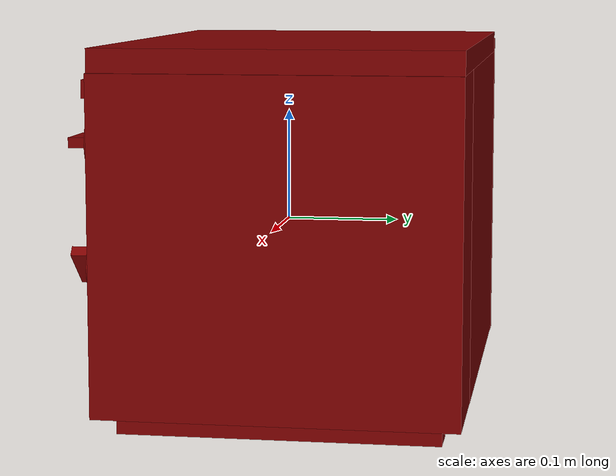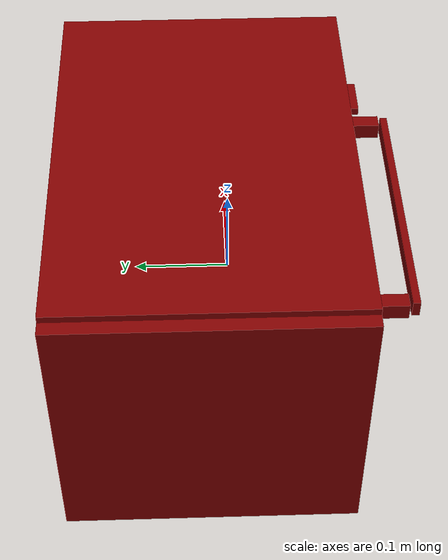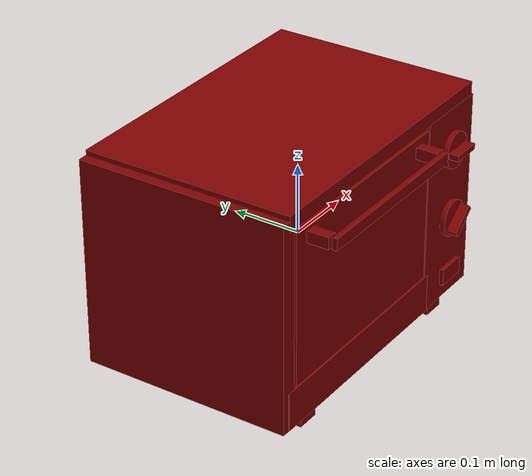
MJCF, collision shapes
<?xml version='1.0' encoding='UTF-8'?>
<mujoco model="model">
  <option timestep="0.002" gravity="0.0 0.0 -9.81"/>
  <compiler angle="radian"/>
  <asset>
    <mesh file="visuals/Body001.obj" name="Body001_vis"/>
    <mesh file="visuals/Button001.obj" name="Button001_vis"/>
    <mesh file="visuals/Door001.obj" name="Door001_vis"/>
    <mesh file="visuals/Door001_Clear.obj" name="Door001_Clear_vis"/>
    <mesh file="visuals/Handle001.obj" name="Handle001_vis"/>
    <mesh file="visuals/Knob001.obj" name="Knob001_vis"/>
    <mesh file="visuals/Knob002.obj" name="Knob002_vis"/>
    <mesh file="visuals/Shelf001.obj" name="Shelf001_vis"/>
    <mesh file="visuals/Shelf002.obj" name="Shelf002_vis"/>
    <texture file="visuals/T_BC001.png" name="Body001_material" type="2d"/>
    <material name="Body001_material" rgba="1 1 1 1.0" texture="Body001_material" shininess="0.1" specular="4"/>
    <texture file="visuals/T_BC001.png" name="Button001_material" type="2d"/>
    <material name="Button001_material" rgba="1 1 1 1.0" texture="Button001_material" shininess="0.1" specular="4"/>
    <texture file="visuals/T_BC001.png" name="Door001_material" type="2d"/>
    <material name="Door001_material" rgba="1 1 1 1.0" texture="Door001_material" shininess="1" specular="4"/>
    <material name="Door001_Clear_material" rgba="0.027718495577573776 0.027718495577573776 0.027718495577573776 0.8508064150810242" shininess="0.5" specular="0.3103448502657381"/>
    <texture file="visuals/T_BC001.png" name="Handle001_material" type="2d"/>
    <material name="Handle001_material" rgba="1 1 1 1.0" texture="Handle001_material" shininess="0.1" specular="4"/>
    <texture file="visuals/T_BC001.png" name="Knob001_material" type="2d"/>
    <material name="Knob001_material" rgba="1 1 1 1.0" texture="Knob001_material" shininess="0.1" specular="4"/>
    <texture file="visuals/T_BC001.png" name="Knob002_material" type="2d"/>
    <material name="Knob002_material" rgba="1 1 1 1.0" texture="Knob002_material" shininess="0.1" specular="4"/>
    <texture file="visuals/T_BC001.png" name="Shelf001_material" type="2d"/>
    <material name="Shelf001_material" rgba="1 1 1 1.0" texture="Shelf001_material" shininess="0.1" specular="4"/>
    <texture file="visuals/T_BC001.png" name="Shelf002_material" type="2d"/>
    <material name="Shelf002_material" rgba="1 1 1 1.0" texture="Shelf002_material" shininess="0.1" specular="4"/>
  </asset>
  <default>
    <default class="visual">
      <geom conaffinity="0" contype="0" group="1" type="mesh"/>
    </default>
    <default class="collision">
      <geom group="0" rgba="0.5 0 0 0.5"/>
    </default>
    <default class="spawn">
      <geom group="0" rgba="1 1 1 0.5" contype="0" conaffinity="0"/>
      <site group="0" rgba="1 1 1 0.5"/>
    </default>
    <default class="region">
      <geom group="1" conaffinity="0" contype="0" rgba="0 1 0 0"/>
    </default>
  </default>
  <worldbody>
    <body>
      <body name="object">
        <geom mesh="Body001_vis" type="mesh" solimp="0.998 0.998 0.001" solref="0.001 1" friction="0.95 0.3 0.1" class="visual" material="Body001_material"/>
        <geom class="collision" type="box" pos="-0.21877223253250122 0.02322467789053917 0.007634885609149933" size="0.01202850416302681 0.15374377369880676 0.15099817514419556" quat="1.0 0.0 0.0 0.0"/>
        <geom class="collision" type="box" pos="0.004826840478926897 0.02322467789053917 0.15505971014499664" size="0.2213992029428482 0.15374384820461273 0.01083868183195591" quat="1.0 0.0 0.0 0.0"/>
        <geom class="collision" type="box" pos="0.17352145910263062 0.02322467789053917 0.002373405732214451" size="0.05724387615919113 0.1537439227104187 0.14335086941719055" quat="1.0 0.0 0.0 0.0"/>
        <geom class="collision" type="box" pos="-0.047959938645362854 0.158494770526886 0.0018804371356964111" size="0.1712847352027893 0.018475137650966644 0.1438439041376114" quat="1.0 0.0 0.0 0.0"/>
        <geom class="collision" type="box" pos="-0.047959938645362854 0.004568807780742645 -0.11468327790498734" size="0.17128480970859528 0.1358461230993271 0.028275391086935997" quat="1.0 0.0 0.0 0.0"/>
        <geom class="collision" type="box" pos="-0.04832351580262184 0.030500903725624084 0.1415063440799713" size="0.1195424348115921 0.1100500300526619 0.0033256211318075657" quat="1.0 0.0 0.0 0.0"/>
        <geom class="collision" type="box" pos="0.09545688331127167 0.02468828484416008 0.07972432672977448" size="0.001964716473594308 0.09458975493907928 0.001897080335766077" quat="1.0 0.0 0.0 0.0"/>
        <geom class="collision" type="box" pos="0.09545688331127167 0.006822250783443451 0.07002994418144226" size="0.0019647174049168825 0.1124558374285698 0.0018970812670886517" quat="1.0 0.0 0.0 0.0"/>
        <geom class="collision" type="box" pos="0.10748392343521118 -0.11092094331979752 0.07002994418144226" size="0.0015673907473683357 0.0096534239128232 0.0018970880191773176" quat="0.6907860636711121 0.0 -0.0 -0.7230591773986816"/>
        <geom class="collision" type="box" pos="0.10748392343521118 -0.11092094331979752 0.08554912358522415" size="0.0015673907473683357 0.0096534239128232 0.0018970880191773176" quat="0.6907860636711121 0.0 -0.0 -0.7230591773986816"/>
        <geom class="collision" type="box" pos="0.09545688331127167 -0.08733263611793518 0.08374722301959991" size="0.0019647241570055485 0.01828564703464508 0.001982876332476735" quat="0.9939031600952148 -0.11025635153055191 -0.0 0.0"/>
        <geom class="collision" type="box" pos="0.10748392343521118 0.12902984023094177 0.07885001599788666" size="0.0015673907473683357 0.0096534239128232 0.0018970880191773176" quat="0.6907861828804016 0.0 0.0 0.7230591177940369"/>
        <geom class="collision" type="box" pos="0.10748392343521118 0.12708550691604614 0.07002994418144226" size="0.0015673907473683357 0.0096534239128232 0.0018970880191773176" quat="0.6907861828804016 0.0 0.0 0.7230591177940369"/>
        <geom class="collision" type="box" pos="0.10748392343521118 0.12708550691604614 -0.016184449195861816" size="0.0015673907473683357 0.0096534239128232 0.0018970880191773176" quat="0.6907861828804016 0.0 0.0 0.7230591177940369"/>
        <geom class="collision" type="box" pos="0.10748392343521118 0.12902984023094177 -0.00780215859413147" size="0.0015673907473683357 0.0096534239128232 0.0018970880191773176" quat="0.6907861828804016 0.0 0.0 0.7230591177940369"/>
        <geom class="collision" type="box" pos="0.09545688331127167 -0.08733263611793518 -0.002904951572418213" size="0.0019647241570055485 0.01828564703464508 0.001982876332476735" quat="0.9939031600952148 -0.11025635153055191 -0.0 0.0"/>
        <geom class="collision" type="box" pos="0.10748392343521118 -0.11092094331979752 -0.0011030510067939758" size="0.0015673907473683357 0.0096534239128232 0.0018970880191773176" quat="0.6907860636711121 0.0 -0.0 -0.7230591773986816"/>
        <geom class="collision" type="box" pos="0.10748392343521118 -0.11092094331979752 -0.016184449195861816" size="0.0015673907473683357 0.0096534239128232 0.0018970880191773176" quat="0.6907860636711121 0.0 -0.0 -0.7230591773986816"/>
        <geom class="collision" type="box" pos="0.09545688331127167 0.006822250783443451 -0.016184449195861816" size="0.001964718336239457 0.11245589703321457 0.0018970820819959044" quat="1.0 0.0 0.0 0.0"/>
        <geom class="collision" type="box" pos="0.09545688331127167 0.02468828484416008 -0.006927847862243652" size="0.0019647192675620317 0.09458992630243301 0.001897083013318479" quat="1.0 0.0 0.0 0.0"/>
        <geom class="collision" type="box" pos="-0.18817514181137085 0.024287831038236618 -0.006927848793566227" size="0.0019647199660539627 0.09458998590707779 0.0018970839446410537" quat="1.0 0.0 0.0 0.0"/>
        <geom class="collision" type="box" pos="-0.18817514181137085 0.006421797908842564 -0.016184449195861816" size="0.0019647208973765373 0.1124560683965683 0.0018970847595483065" quat="1.0 0.0 0.0 0.0"/>
        <geom class="collision" type="box" pos="-0.20020218193531036 -0.11132140457630157 -0.016184449195861816" size="0.0015673907473683357 0.0096534239128232 0.0018970880191773176" quat="0.6907861828804016 0.0 0.0 0.7230591177940369"/>
        <geom class="collision" type="box" pos="-0.20020218193531036 -0.11132140457630157 -0.0011030519381165504" size="0.0015673907473683357 0.0096534239128232 0.0018970880191773176" quat="0.6907861828804016 0.0 0.0 0.7230591177940369"/>
        <geom class="collision" type="box" pos="-0.18817514181137085 -0.08773308992385864 -0.0029049525037407875" size="0.0019647241570055485 0.01828564703464508 0.001982876332476735" quat="0.9939031600952148 -0.11025635153055191 -0.0 0.0"/>
        <geom class="collision" type="box" pos="-0.20020218193531036 0.1286293864250183 -0.007802159525454044" size="0.0015673907473683357 0.0096534239128232 0.0018970880191773176" quat="0.6907861828804016 0.0 -0.0 -0.7230591177940369"/>
        <geom class="collision" type="box" pos="-0.20020218193531036 0.12668505311012268 -0.016184449195861816" size="0.0015673907473683357 0.0096534239128232 0.0018970880191773176" quat="0.6907861828804016 0.0 -0.0 -0.7230591177940369"/>
        <geom class="collision" type="box" pos="-0.20020218193531036 0.12668505311012268 0.07002994418144226" size="0.0015673907473683357 0.0096534239128232 0.0018970880191773176" quat="0.6907861828804016 0.0 -0.0 -0.7230591177940369"/>
        <geom class="collision" type="box" pos="-0.20020218193531036 0.1286293864250183 0.07885001599788666" size="0.0015673907473683357 0.0096534239128232 0.0018970880191773176" quat="0.6907861828804016 0.0 -0.0 -0.7230591177940369"/>
        <geom class="collision" type="box" pos="-0.18817514181137085 -0.08773308992385864 0.08374722301959991" size="0.0019647241570055485 0.01828564703464508 0.001982876332476735" quat="0.9939031600952148 -0.11025635153055191 -0.0 0.0"/>
        <geom class="collision" type="box" pos="-0.20020218193531036 -0.11132140457630157 0.08554912358522415" size="0.0015673907473683357 0.0096534239128232 0.0018970880191773176" quat="0.6907861828804016 0.0 0.0 0.7230591177940369"/>
        <geom class="collision" type="box" pos="-0.20020218193531036 -0.11132140457630157 0.07002994418144226" size="0.0015673907473683357 0.0096534239128232 0.0018970880191773176" quat="0.6907861828804016 0.0 0.0 0.7230591177940369"/>
        <geom class="collision" type="box" pos="-0.18817514181137085 0.006421796977519989 0.07002994418144226" size="0.001964721828699112 0.11245612800121307 0.001897085690870881" quat="1.0 0.0 0.0 0.0"/>
        <geom class="collision" type="box" pos="-0.18817514181137085 0.024287831038236618 0.07972432672977448" size="0.0019647227600216866 0.09459014981985092 0.0018970865057781339" quat="1.0 0.0 0.0 0.0"/>
        <geom class="collision" type="box" pos="-0.15941759943962097 0.01840236410498619 -0.15419569611549377" size="0.01678498461842537 0.13938933610916138 0.011702729389071465" quat="1.0 0.0 0.0 0.0"/>
        <geom class="collision" type="box" pos="0.1624724268913269 0.01840236410498619 -0.15419569611549377" size="0.01678498648107052 0.13938935101032257 0.011702731251716614" quat="1.0 0.0 0.0 0.0"/>
        <body name="Button001">
          <joint axis="0.0 1.0 0.0" pos="0.17668302357196808 -0.13461464643478394 -0.10286121815443039" limited="true" name="Button001_joint" range="0.0 0.003" type="slide" damping="1" frictionloss="1" armature=".01" stiffness="0.05"/>
          <geom mesh="Button001_vis" type="mesh" solimp="0.998 0.998 0.001" solref="0.001 1" friction="0.95 0.3 0.1" class="visual" material="Button001_material"/>
          <geom class="collision" type="box" pos="0.17669694125652313 -0.13604387640953064 -0.10348032414913177" size="0.022439634427428246 0.003150008153170347 0.012216387316584587" quat="1.0 0.0 0.0 0.0"/>
        </body>
        <body name="Door001">
          <joint axis="1.0 0.0 0.0" pos="-0.04910198971629143 -0.1300266832113266 -0.09429144859313965" limited="true" name="Door001_joint" range="0.0 1.5707963267948966" type="hinge" damping="1" frictionloss="1" armature=".01" stiffness="0.05"/>
          <geom mesh="Door001_vis" type="mesh" solimp="0.998 0.998 0.001" solref="0.001 1" friction="0.95 0.3 0.1" class="visual" material="Door001_material"/>
          <geom class="collision" type="box" pos="-0.04572342708706856 -0.12485657632350922 0.02870841510593891" size="0.15778911113739014 0.006507790647447109 0.11144860088825226" quat="1.0 0.0 0.0 0.0"/>
          <body name="Door001_Clear">
            <geom mesh="Door001_Clear_vis" type="mesh" solimp="0.998 0.998 0.001" solref="0.001 1" friction="0.95 0.3 0.1" class="visual" material="Door001_Clear_material"/>
            <geom class="collision" type="box" pos="-0.04783531650900841 -0.12328512966632843 0.015823151916265488" size="0.15466490387916565 0.0022350559011101723 0.0910041555762291" quat="1.0 0.0 0.0 0.0"/>
          </body>
          <body name="Handle001">
            <geom mesh="Handle001_vis" type="mesh" solimp="0.998 0.998 0.001" solref="0.001 1" friction="0.95 0.3 0.1" class="visual" material="Handle001_material"/>
            <geom class="collision" type="box" pos="-0.046276964247226715 -0.17030739784240723 0.12317418307065964" size="0.13382969796657562 0.00368265132419765 0.008488301187753677" quat="1.0 0.0 0.0 0.0"/>
            <geom class="collision" type="box" pos="0.08291781693696976 -0.148769348859787 0.12317418307065964" size="0.007553317584097385 0.015613029710948467 0.008488301187753677" quat="1.0 0.0 0.0 0.0"/>
            <geom class="collision" type="box" pos="-0.17560052871704102 -0.14804984629154205 0.12317418307065964" size="0.007553317584097385 0.015613029710948467 0.008488301187753677" quat="1.0 0.0 0.0 0.0"/>
          </body>
        </body>
        <body name="Knob001">
          <joint axis="0.0 1.0 0.0" pos="0.1768685132265091 -0.142544686794281 0.08579237759113312" limited="true" name="Knob001_joint" range="0.0 5.410520681182422" type="hinge" damping="0.05" armature="0.001" springref="-0.01"/>
          <geom mesh="Knob001_vis" type="mesh" solimp="0.998 0.998 0.001" solref="0.001 1" friction="0.95 0.3 0.1" class="visual" material="Knob001_material"/>
          <geom class="collision" type="cylinder" pos="0.1769108772277832 -0.13558289408683777 0.08579499274492264" size="0.026501605287194252 0.003774190554395318" quat="0.7071067094802856 0.7071068286895752 0.0 0.0"/>
          <geom class="collision" type="box" pos="0.1767369508743286 -0.14637765288352966 0.08617718517780304" size="0.022439634427428246 0.007598815020173788 0.004390833433717489" quat="1.0 0.0 0.0 0.0"/>
        </body>
        <body name="Knob002">
          <joint axis="0.0 1.0 0.0" pos="0.1768685132265091 -0.1425272822380066 -0.019056694582104683" limited="true" name="Knob002_joint" range="0.0 5.410520681182422" type="hinge" damping="0.05" armature="0.001" springref="-0.01"/>
          <geom mesh="Knob002_vis" type="mesh" solimp="0.998 0.998 0.001" solref="0.001 1" friction="0.95 0.3 0.1" class="visual" material="Knob002_material"/>
          <geom class="collision" type="box" pos="0.17749057710170746 -0.14637765288352966 -0.019612757489085197" size="0.022439634427428246 0.007598815020173788 0.004390833433717489" quat="0.9408627152442932 0.0 -0.3387880027294159 0.0"/>
          <geom class="collision" type="cylinder" pos="0.1769108772277832 -0.13558289408683777 -0.018895963206887245" size="0.026501605287194252 0.003774190554395318" quat="0.7071067094802856 0.7071068286895752 0.0 0.0"/>
        </body>
        <body name="Shelf001">
          <joint axis="0.0 -1.0 0.0" pos="-0.04792361333966255 0.02722150646150112 -0.016832485795021057" limited="true" name="Shelf001_joint" range="0.0 0.22" type="slide" damping="1" frictionloss="1" armature=".01" stiffness="0.05"/>
          <geom mesh="Shelf001_vis" type="mesh" solimp="0.998 0.998 0.001" solref="0.001 1" friction="0.95 0.3 0.1" class="visual" material="Shelf001_material"/>
          <geom class="collision" type="box" pos="-0.04632631689310074 0.024022063240408897 -0.01691349223256111" size="0.1391114741563797 0.11462654918432236 0.004622312728315592" quat="1.0 0.0 0.0 0.0"/>
        </body>
        <body name="Shelf002">
          <joint axis="0.0 -1.0 0.0" pos="-0.04792361333966255 0.02722150646150112 0.06941118836402893" limited="true" name="Shelf002_joint" range="0.0 0.22" type="slide" damping="1" frictionloss="1" armature=".01" stiffness="0.05"/>
          <geom mesh="Shelf002_vis" type="mesh" solimp="0.998 0.998 0.001" solref="0.001 1" friction="0.95 0.3 0.1" class="visual" material="Shelf002_material"/>
          <geom class="collision" type="box" pos="-0.04632631689310074 0.024022063240408897 0.06941745430231094" size="0.1391114741563797 0.11462654918432236 0.004622312728315592" quat="1.0 0.0 0.0 0.0"/>
        </body>
        <geom class="region" name="reg_int" type="box" pos="-0.045896705240011215 0.011022750288248062 0.028226476162672043" size="0.1651526279747486 0.13285097107291222 0.12178993597626686"/>
        <geom class="region" name="reg_main" type="box" pos="3.725290298461914e-09 0.022802866995334625 0.0" size="0.23080085217952728 0.15416723489761353 0.1658984273672104"/>
      </body>
    </body>
  </worldbody>
  <actuator>
    <motor name="Button001_joint_actuator" joint="Button001_joint" gear="0.5"/>
    <motor name="Door001_joint_actuator" joint="Door001_joint" gear="50"/>
    <motor name="Knob001_joint_actuator" joint="Knob001_joint" gear="50"/>
    <motor name="Knob002_joint_actuator" joint="Knob002_joint" gear="50"/>
    <motor name="Shelf001_joint_actuator" joint="Shelf001_joint" gear="50"/>
    <motor name="Shelf002_joint_actuator" joint="Shelf002_joint" gear="50"/>
  </actuator>
</mujoco>
